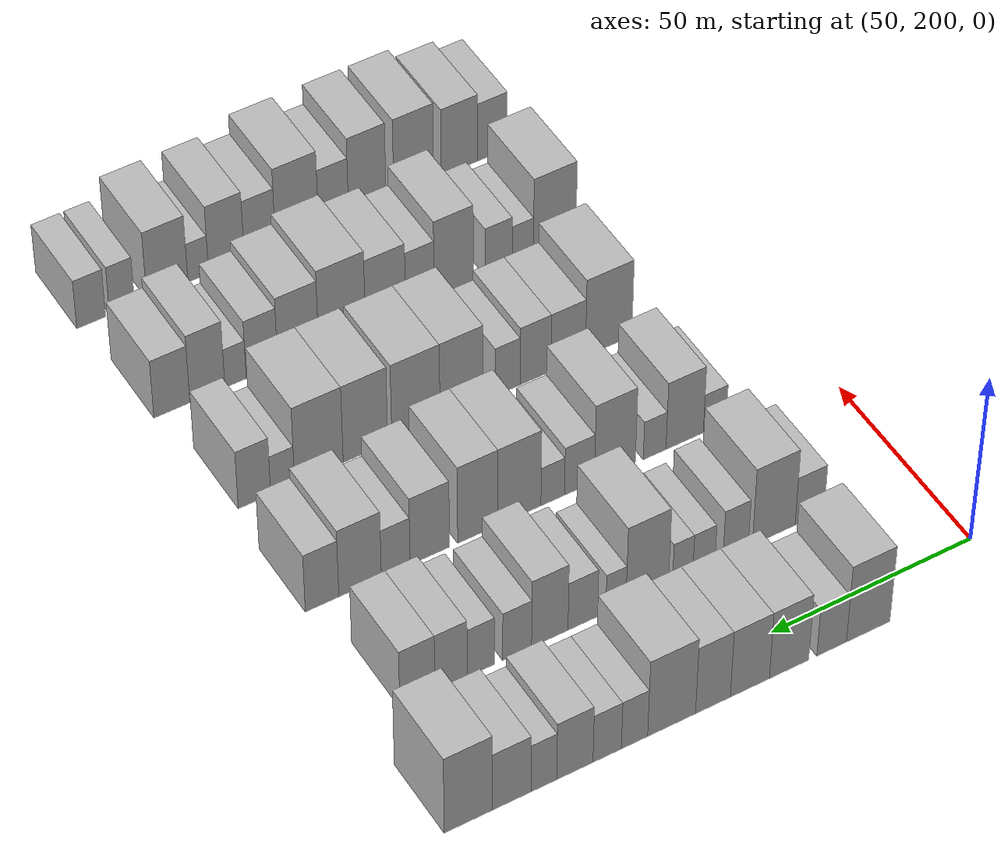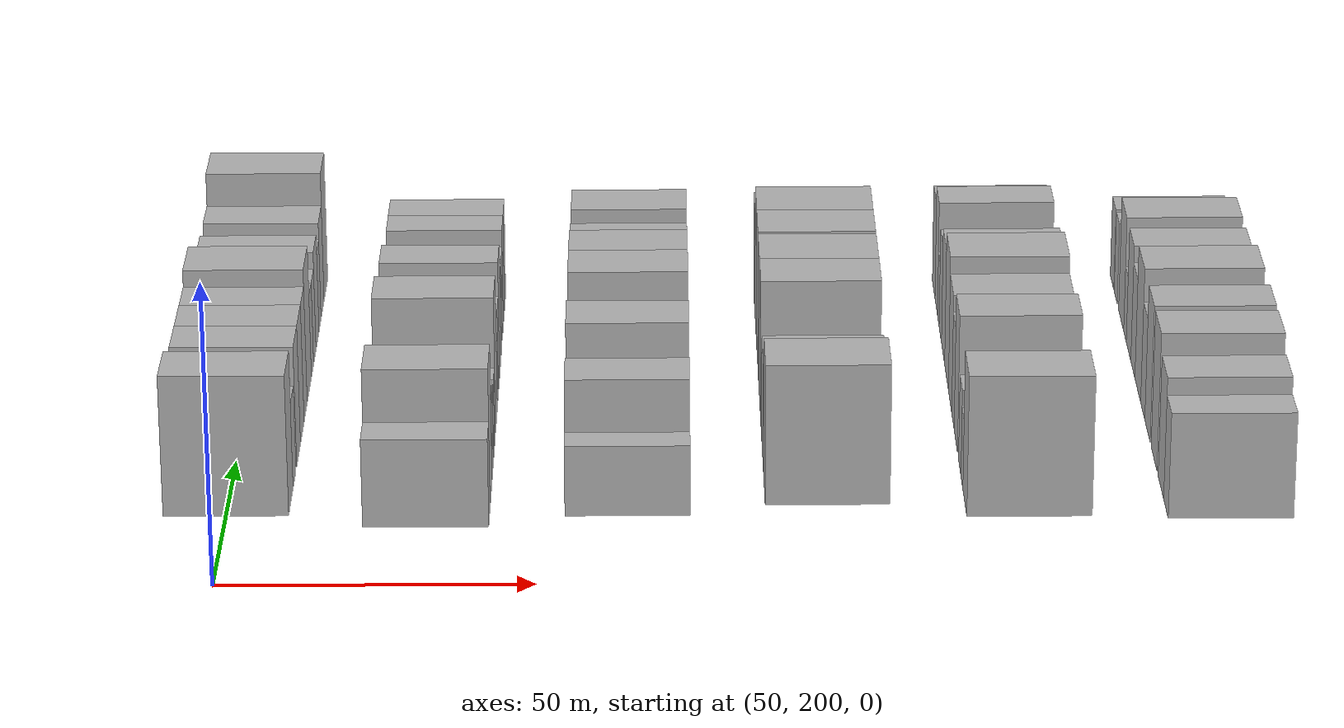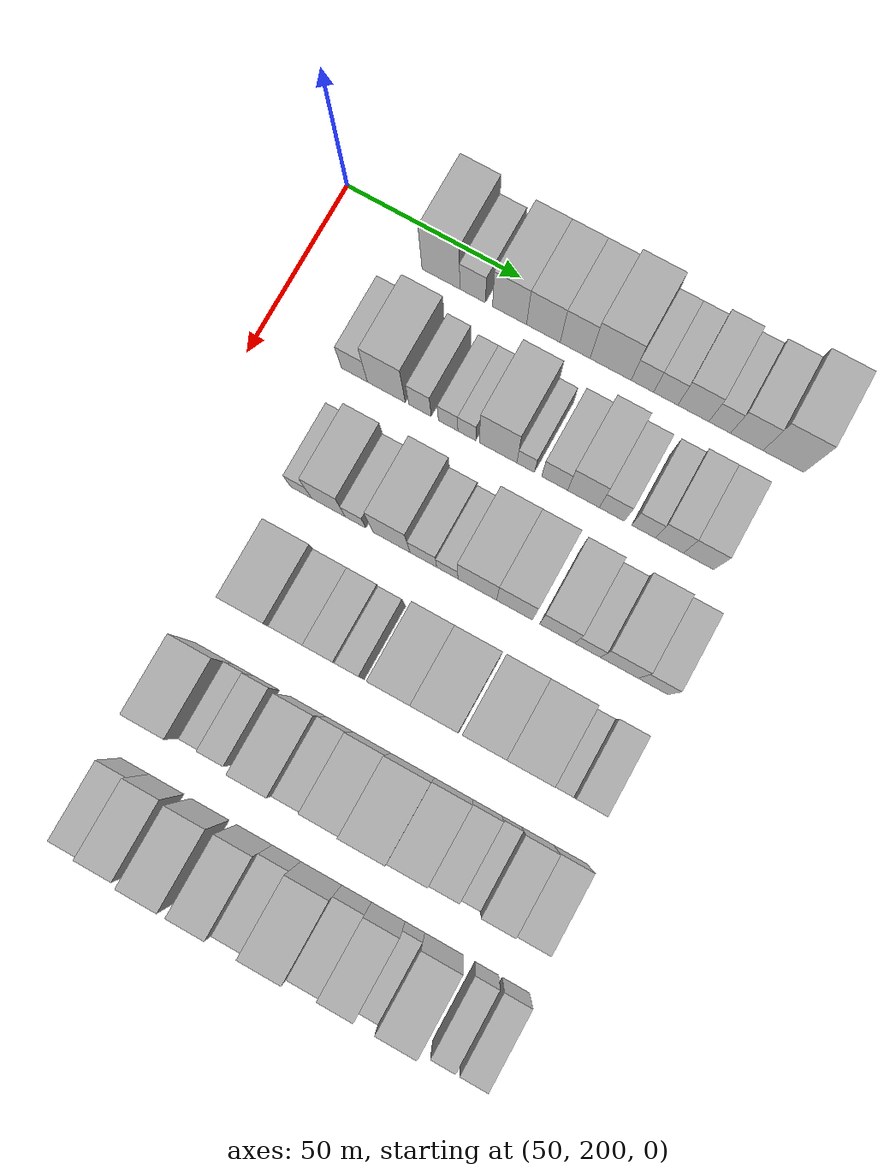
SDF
<sdf version="1.6">
 <world name="default">
  <model name="building_85">
   <static>1</static>
   <pose>50.0000 232.6775 0 0.000000 0.000000 0.000000</pose>
   <link name="link">
    <pose>0 0 12.00 0 0 0</pose>
    <collision name="collision"><geometry><box><size>20.0000 10.8062 24.0000</size></box></geometry></collision>
    <visual name="visual">
     <cast_shadows>0</cast_shadows>
     <geometry><box><size>20.0000 10.8062 24.0000</size></box></geometry>
     <material>
      <script>
       <uri>model://HANNAS_wall/materials/scripts</uri>
       <uri>model://HANNAS_wall/materials/textures</uri>
       <name>vrc/HANNAS_wall</name>
      </script>
     </material>
    </visual>
   </link>
  </model>
  <model name="building_86">
   <static>1</static>
   <pose>50.0000 241.7405 0 0.000000 0.000000 0.000000</pose>
   <link name="link">
    <pose>0 0 7.50 0 0 0</pose>
    <collision name="collision"><geometry><box><size>20.0000 7.3197 15.0000</size></box></geometry></collision>
    <visual name="visual">
     <cast_shadows>0</cast_shadows>
     <geometry><box><size>20.0000 7.3197 15.0000</size></box></geometry>
     <material>
      <script>
       <uri>model://HANNAS_wall/materials/scripts</uri>
       <uri>model://HANNAS_wall/materials/textures</uri>
       <name>vrc/HANNAS_wall</name>
      </script>
     </material>
    </visual>
   </link>
  </model>
  <model name="building_87">
   <static>1</static>
   <pose>50.0000 252.2231 0 0.000000 0.000000 0.000000</pose>
   <link name="link">
    <pose>0 0 10.50 0 0 0</pose>
    <collision name="collision"><geometry><box><size>20.0000 9.6453 21.0000</size></box></geometry></collision>
    <visual name="visual">
     <cast_shadows>0</cast_shadows>
     <geometry><box><size>20.0000 9.6453 21.0000</size></box></geometry>
     <material>
      <script>
       <uri>model://HANNAS_wall/materials/scripts</uri>
       <uri>model://HANNAS_wall/materials/textures</uri>
       <name>vrc/HANNAS_wall</name>
      </script>
     </material>
    </visual>
   </link>
  </model>
  <model name="building_88">
   <static>1</static>
   <pose>50.0000 261.8066 0 0.000000 0.000000 0.000000</pose>
   <link name="link">
    <pose>0 0 10.50 0 0 0</pose>
    <collision name="collision"><geometry><box><size>20.0000 9.5218 21.0000</size></box></geometry></collision>
    <visual name="visual">
     <cast_shadows>0</cast_shadows>
     <geometry><box><size>20.0000 9.5218 21.0000</size></box></geometry>
     <material>
      <script>
       <uri>model://HANNAS_wall/materials/scripts</uri>
       <uri>model://HANNAS_wall/materials/textures</uri>
       <name>vrc/HANNAS_wall</name>
      </script>
     </material>
    </visual>
   </link>
  </model>
  <model name="building_89">
   <static>1</static>
   <pose>50.0000 270.7801 0 0.000000 0.000000 0.000000</pose>
   <link name="link">
    <pose>0 0 10.50 0 0 0</pose>
    <collision name="collision"><geometry><box><size>20.0000 8.4251 21.0000</size></box></geometry></collision>
    <visual name="visual">
     <cast_shadows>0</cast_shadows>
     <geometry><box><size>20.0000 8.4251 21.0000</size></box></geometry>
     <material>
      <script>
       <uri>model://HANNAS_wall/materials/scripts</uri>
       <uri>model://HANNAS_wall/materials/textures</uri>
       <name>vrc/HANNAS_wall</name>
      </script>
     </material>
    </visual>
   </link>
  </model>
  <model name="building_90">
   <static>1</static>
   <pose>50.0000 280.7421 0 0.000000 0.000000 0.000000</pose>
   <link name="link">
    <pose>0 0 12.00 0 0 0</pose>
    <collision name="collision"><geometry><box><size>20.0000 11.4990 24.0000</size></box></geometry></collision>
    <visual name="visual">
     <cast_shadows>0</cast_shadows>
     <geometry><box><size>20.0000 11.4990 24.0000</size></box></geometry>
     <material>
      <script>
       <uri>model://HANNAS_wall/materials/scripts</uri>
       <uri>model://HANNAS_wall/materials/textures</uri>
       <name>vrc/HANNAS_wall</name>
      </script>
     </material>
    </visual>
   </link>
  </model>
  <model name="building_91">
   <static>1</static>
   <pose>50.0000 289.6226 0 0.000000 0.000000 0.000000</pose>
   <link name="link">
    <pose>0 0 7.50 0 0 0</pose>
    <collision name="collision"><geometry><box><size>20.0000 6.2621 15.0000</size></box></geometry></collision>
    <visual name="visual">
     <cast_shadows>0</cast_shadows>
     <geometry><box><size>20.0000 6.2621 15.0000</size></box></geometry>
     <material>
      <script>
       <uri>model://HANNAS_wall/materials/scripts</uri>
       <uri>model://HANNAS_wall/materials/textures</uri>
       <name>vrc/HANNAS_wall</name>
      </script>
     </material>
    </visual>
   </link>
  </model>
  <model name="building_92">
   <static>1</static>
   <pose>50.0000 296.1294 0 0.000000 0.000000 0.000000</pose>
   <link name="link">
    <pose>0 0 7.50 0 0 0</pose>
    <collision name="collision"><geometry><box><size>20.0000 6.7515 15.0000</size></box></geometry></collision>
    <visual name="visual">
     <cast_shadows>0</cast_shadows>
     <geometry><box><size>20.0000 6.7515 15.0000</size></box></geometry>
     <material>
      <script>
       <uri>model://HANNAS_wall/materials/scripts</uri>
       <uri>model://HANNAS_wall/materials/textures</uri>
       <name>vrc/HANNAS_wall</name>
      </script>
     </material>
    </visual>
   </link>
  </model>
  <model name="building_93">
   <static>1</static>
   <pose>50.0000 303.7982 0 0.000000 0.000000 0.000000</pose>
   <link name="link">
    <pose>0 0 9.00 0 0 0</pose>
    <collision name="collision"><geometry><box><size>20.0000 8.5862 18.0000</size></box></geometry></collision>
    <visual name="visual">
     <cast_shadows>0</cast_shadows>
     <geometry><box><size>20.0000 8.5862 18.0000</size></box></geometry>
     <material>
      <script>
       <uri>model://HANNAS_wall/materials/scripts</uri>
       <uri>model://HANNAS_wall/materials/textures</uri>
       <name>vrc/HANNAS_wall</name>
      </script>
     </material>
    </visual>
   </link>
  </model>
  <model name="building_94">
   <static>1</static>
   <pose>50.0000 311.1018 0 0.000000 0.000000 0.000000</pose>
   <link name="link">
    <pose>0 0 7.50 0 0 0</pose>
    <collision name="collision"><geometry><box><size>20.0000 6.0210 15.0000</size></box></geometry></collision>
    <visual name="visual">
     <cast_shadows>0</cast_shadows>
     <geometry><box><size>20.0000 6.0210 15.0000</size></box></geometry>
     <material>
      <script>
       <uri>model://HANNAS_wall/materials/scripts</uri>
       <uri>model://HANNAS_wall/materials/textures</uri>
       <name>vrc/HANNAS_wall</name>
      </script>
     </material>
    </visual>
   </link>
  </model>
  <model name="building_95">
   <static>1</static>
   <pose>50.0000 318.6065 0 0.000000 0.000000 0.000000</pose>
   <link name="link">
    <pose>0 0 9.00 0 0 0</pose>
    <collision name="collision"><geometry><box><size>20.0000 8.9884 18.0000</size></box></geometry></collision>
    <visual name="visual">
     <cast_shadows>0</cast_shadows>
     <geometry><box><size>20.0000 8.9884 18.0000</size></box></geometry>
     <material>
      <script>
       <uri>model://HANNAS_wall/materials/scripts</uri>
       <uri>model://HANNAS_wall/materials/textures</uri>
       <name>vrc/HANNAS_wall</name>
      </script>
     </material>
    </visual>
   </link>
  </model>
  <model name="building_96">
   <static>1</static>
   <pose>50.0000 328.6964 0 0.000000 0.000000 0.000000</pose>
   <link name="link">
    <pose>0 0 12.00 0 0 0</pose>
    <collision name="collision"><geometry><box><size>20.0000 11.1913 24.0000</size></box></geometry></collision>
    <visual name="visual">
     <cast_shadows>0</cast_shadows>
     <geometry><box><size>20.0000 11.1913 24.0000</size></box></geometry>
     <material>
      <script>
       <uri>model://HANNAS_wall/materials/scripts</uri>
       <uri>model://HANNAS_wall/materials/textures</uri>
       <name>vrc/HANNAS_wall</name>
      </script>
     </material>
    </visual>
   </link>
  </model>
  <model name="building_205">
   <static>1</static>
   <pose>82.0000 226.1425 0 0.000000 0.000000 0.000000</pose>
   <link name="link">
    <pose>0 0 7.50 0 0 0</pose>
    <collision name="collision"><geometry><box><size>20.0000 7.3415 15.0000</size></box></geometry></collision>
    <visual name="visual">
     <cast_shadows>0</cast_shadows>
     <geometry><box><size>20.0000 7.3415 15.0000</size></box></geometry>
     <material>
      <script>
       <uri>model://HANNAS_wall/materials/scripts</uri>
       <uri>model://HANNAS_wall/materials/textures</uri>
       <name>vrc/HANNAS_wall</name>
      </script>
     </material>
    </visual>
   </link>
  </model>
  <model name="building_206">
   <static>1</static>
   <pose>82.0000 235.1916 0 0.000000 0.000000 0.000000</pose>
   <link name="link">
    <pose>0 0 12.00 0 0 0</pose>
    <collision name="collision"><geometry><box><size>20.0000 10.7566 24.0000</size></box></geometry></collision>
    <visual name="visual">
     <cast_shadows>0</cast_shadows>
     <geometry><box><size>20.0000 10.7566 24.0000</size></box></geometry>
     <material>
      <script>
       <uri>model://HANNAS_wall/materials/scripts</uri>
       <uri>model://HANNAS_wall/materials/textures</uri>
       <name>vrc/HANNAS_wall</name>
      </script>
     </material>
    </visual>
   </link>
  </model>
  <model name="building_207">
   <static>1</static>
   <pose>82.0000 244.7305 0 0.000000 0.000000 0.000000</pose>
   <link name="link">
    <pose>0 0 7.50 0 0 0</pose>
    <collision name="collision"><geometry><box><size>20.0000 6.3211 15.0000</size></box></geometry></collision>
    <visual name="visual">
     <cast_shadows>0</cast_shadows>
     <geometry><box><size>20.0000 6.3211 15.0000</size></box></geometry>
     <material>
      <script>
       <uri>model://HANNAS_wall/materials/scripts</uri>
       <uri>model://HANNAS_wall/materials/textures</uri>
       <name>vrc/HANNAS_wall</name>
      </script>
     </material>
    </visual>
   </link>
  </model>
  <model name="building_208">
   <static>1</static>
   <pose>82.0000 252.6291 0 0.000000 0.000000 0.000000</pose>
   <link name="link">
    <pose>0 0 6.00 0 0 0</pose>
    <collision name="collision"><geometry><box><size>20.0000 5.4761 12.0000</size></box></geometry></collision>
    <visual name="visual">
     <cast_shadows>0</cast_shadows>
     <geometry><box><size>20.0000 5.4761 12.0000</size></box></geometry>
     <material>
      <script>
       <uri>model://HANNAS_wall/materials/scripts</uri>
       <uri>model://HANNAS_wall/materials/textures</uri>
       <name>vrc/HANNAS_wall</name>
      </script>
     </material>
    </visual>
   </link>
  </model>
  <model name="building_209">
   <static>1</static>
   <pose>82.0000 257.8853 0 0.000000 0.000000 0.000000</pose>
   <link name="link">
    <pose>0 0 6.00 0 0 0</pose>
    <collision name="collision"><geometry><box><size>20.0000 5.0364 12.0000</size></box></geometry></collision>
    <visual name="visual">
     <cast_shadows>0</cast_shadows>
     <geometry><box><size>20.0000 5.0364 12.0000</size></box></geometry>
     <material>
      <script>
       <uri>model://HANNAS_wall/materials/scripts</uri>
       <uri>model://HANNAS_wall/materials/textures</uri>
       <name>vrc/HANNAS_wall</name>
      </script>
     </material>
    </visual>
   </link>
  </model>
  <model name="building_210">
   <static>1</static>
   <pose>82.0000 266.6277 0 0.000000 0.000000 0.000000</pose>
   <link name="link">
    <pose>0 0 12.00 0 0 0</pose>
    <collision name="collision"><geometry><box><size>20.0000 10.4486 24.0000</size></box></geometry></collision>
    <visual name="visual">
     <cast_shadows>0</cast_shadows>
     <geometry><box><size>20.0000 10.4486 24.0000</size></box></geometry>
     <material>
      <script>
       <uri>model://HANNAS_wall/materials/scripts</uri>
       <uri>model://HANNAS_wall/materials/textures</uri>
       <name>vrc/HANNAS_wall</name>
      </script>
     </material>
    </visual>
   </link>
  </model>
  <model name="building_211">
   <static>1</static>
   <pose>82.0000 274.3190 0 0.000000 0.000000 0.000000</pose>
   <link name="link">
    <pose>0 0 6.00 0 0 0</pose>
    <collision name="collision"><geometry><box><size>20.0000 4.9340 12.0000</size></box></geometry></collision>
    <visual name="visual">
     <cast_shadows>0</cast_shadows>
     <geometry><box><size>20.0000 4.9340 12.0000</size></box></geometry>
     <material>
      <script>
       <uri>model://HANNAS_wall/materials/scripts</uri>
       <uri>model://HANNAS_wall/materials/textures</uri>
       <name>vrc/HANNAS_wall</name>
      </script>
     </material>
    </visual>
   </link>
  </model>
  <model name="building_212">
   <static>1</static>
   <pose>82.0000 282.3787 0 0.000000 0.000000 0.000000</pose>
   <link name="link">
    <pose>0 0 7.50 0 0 0</pose>
    <collision name="collision"><geometry><box><size>20.0000 7.1854 15.0000</size></box></geometry></collision>
    <visual name="visual">
     <cast_shadows>0</cast_shadows>
     <geometry><box><size>20.0000 7.1854 15.0000</size></box></geometry>
     <material>
      <script>
       <uri>model://HANNAS_wall/materials/scripts</uri>
       <uri>model://HANNAS_wall/materials/textures</uri>
       <name>vrc/HANNAS_wall</name>
      </script>
     </material>
    </visual>
   </link>
  </model>
  <model name="building_213">
   <static>1</static>
   <pose>82.0000 290.3673 0 0.000000 0.000000 0.000000</pose>
   <link name="link">
    <pose>0 0 10.50 0 0 0</pose>
    <collision name="collision"><geometry><box><size>20.0000 8.7919 21.0000</size></box></geometry></collision>
    <visual name="visual">
     <cast_shadows>0</cast_shadows>
     <geometry><box><size>20.0000 8.7919 21.0000</size></box></geometry>
     <material>
      <script>
       <uri>model://HANNAS_wall/materials/scripts</uri>
       <uri>model://HANNAS_wall/materials/textures</uri>
       <name>vrc/HANNAS_wall</name>
      </script>
     </material>
    </visual>
   </link>
  </model>
  <model name="building_214">
   <static>1</static>
   <pose>82.0000 298.2306 0 0.000000 0.000000 0.000000</pose>
   <link name="link">
    <pose>0 0 7.50 0 0 0</pose>
    <collision name="collision"><geometry><box><size>20.0000 6.9346 15.0000</size></box></geometry></collision>
    <visual name="visual">
     <cast_shadows>0</cast_shadows>
     <geometry><box><size>20.0000 6.9346 15.0000</size></box></geometry>
     <material>
      <script>
       <uri>model://HANNAS_wall/materials/scripts</uri>
       <uri>model://HANNAS_wall/materials/textures</uri>
       <name>vrc/HANNAS_wall</name>
      </script>
     </material>
    </visual>
   </link>
  </model>
  <model name="building_215">
   <static>1</static>
   <pose>82.0000 306.9303 0 0.000000 0.000000 0.000000</pose>
   <link name="link">
    <pose>0 0 7.50 0 0 0</pose>
    <collision name="collision"><geometry><box><size>20.0000 6.4648 15.0000</size></box></geometry></collision>
    <visual name="visual">
     <cast_shadows>0</cast_shadows>
     <geometry><box><size>20.0000 6.4648 15.0000</size></box></geometry>
     <material>
      <script>
       <uri>model://HANNAS_wall/materials/scripts</uri>
       <uri>model://HANNAS_wall/materials/textures</uri>
       <name>vrc/HANNAS_wall</name>
      </script>
     </material>
    </visual>
   </link>
  </model>
  <model name="building_216">
   <static>1</static>
   <pose>82.0000 313.9962 0 0.000000 0.000000 0.000000</pose>
   <link name="link">
    <pose>0 0 9.00 0 0 0</pose>
    <collision name="collision"><geometry><box><size>20.0000 7.6670 18.0000</size></box></geometry></collision>
    <visual name="visual">
     <cast_shadows>0</cast_shadows>
     <geometry><box><size>20.0000 7.6670 18.0000</size></box></geometry>
     <material>
      <script>
       <uri>model://HANNAS_wall/materials/scripts</uri>
       <uri>model://HANNAS_wall/materials/textures</uri>
       <name>vrc/HANNAS_wall</name>
      </script>
     </material>
    </visual>
   </link>
  </model>
  <model name="building_217">
   <static>1</static>
   <pose>82.0000 321.9769 0 0.000000 0.000000 0.000000</pose>
   <link name="link">
    <pose>0 0 9.00 0 0 0</pose>
    <collision name="collision"><geometry><box><size>20.0000 8.2944 18.0000</size></box></geometry></collision>
    <visual name="visual">
     <cast_shadows>0</cast_shadows>
     <geometry><box><size>20.0000 8.2944 18.0000</size></box></geometry>
     <material>
      <script>
       <uri>model://HANNAS_wall/materials/scripts</uri>
       <uri>model://HANNAS_wall/materials/textures</uri>
       <name>vrc/HANNAS_wall</name>
      </script>
     </material>
    </visual>
   </link>
  </model>
  <model name="building_324">
   <static>1</static>
   <pose>114.0000 229.5296 0 0.000000 0.000000 0.000000</pose>
   <link name="link">
    <pose>0 0 6.00 0 0 0</pose>
    <collision name="collision"><geometry><box><size>20.0000 5.8527 12.0000</size></box></geometry></collision>
    <visual name="visual">
     <cast_shadows>0</cast_shadows>
     <geometry><box><size>20.0000 5.8527 12.0000</size></box></geometry>
     <material>
      <script>
       <uri>model://HANNAS_wall/materials/scripts</uri>
       <uri>model://HANNAS_wall/materials/textures</uri>
       <name>vrc/HANNAS_wall</name>
      </script>
     </material>
    </visual>
   </link>
  </model>
  <model name="building_325">
   <static>1</static>
   <pose>114.0000 237.1925 0 0.000000 0.000000 0.000000</pose>
   <link name="link">
    <pose>0 0 10.50 0 0 0</pose>
    <collision name="collision"><geometry><box><size>20.0000 9.4731 21.0000</size></box></geometry></collision>
    <visual name="visual">
     <cast_shadows>0</cast_shadows>
     <geometry><box><size>20.0000 9.4731 21.0000</size></box></geometry>
     <material>
      <script>
       <uri>model://HANNAS_wall/materials/scripts</uri>
       <uri>model://HANNAS_wall/materials/textures</uri>
       <name>vrc/HANNAS_wall</name>
      </script>
     </material>
    </visual>
   </link>
  </model>
  <model name="building_326">
   <static>1</static>
   <pose>114.0000 244.8011 0 0.000000 0.000000 0.000000</pose>
   <link name="link">
    <pose>0 0 6.00 0 0 0</pose>
    <collision name="collision"><geometry><box><size>20.0000 5.7439 12.0000</size></box></geometry></collision>
    <visual name="visual">
     <cast_shadows>0</cast_shadows>
     <geometry><box><size>20.0000 5.7439 12.0000</size></box></geometry>
     <material>
      <script>
       <uri>model://HANNAS_wall/materials/scripts</uri>
       <uri>model://HANNAS_wall/materials/textures</uri>
       <name>vrc/HANNAS_wall</name>
      </script>
     </material>
    </visual>
   </link>
  </model>
  <model name="building_327">
   <static>1</static>
   <pose>114.0000 254.8200 0 0.000000 0.000000 0.000000</pose>
   <link name="link">
    <pose>0 0 12.00 0 0 0</pose>
    <collision name="collision"><geometry><box><size>20.0000 10.2940 24.0000</size></box></geometry></collision>
    <visual name="visual">
     <cast_shadows>0</cast_shadows>
     <geometry><box><size>20.0000 10.2940 24.0000</size></box></geometry>
     <material>
      <script>
       <uri>model://HANNAS_wall/materials/scripts</uri>
       <uri>model://HANNAS_wall/materials/textures</uri>
       <name>vrc/HANNAS_wall</name>
      </script>
     </material>
    </visual>
   </link>
  </model>
  <model name="building_328">
   <static>1</static>
   <pose>114.0000 263.6807 0 0.000000 0.000000 0.000000</pose>
   <link name="link">
    <pose>0 0 7.50 0 0 0</pose>
    <collision name="collision"><geometry><box><size>20.0000 7.4273 15.0000</size></box></geometry></collision>
    <visual name="visual">
     <cast_shadows>0</cast_shadows>
     <geometry><box><size>20.0000 7.4273 15.0000</size></box></geometry>
     <material>
      <script>
       <uri>model://HANNAS_wall/materials/scripts</uri>
       <uri>model://HANNAS_wall/materials/textures</uri>
       <name>vrc/HANNAS_wall</name>
      </script>
     </material>
    </visual>
   </link>
  </model>
  <model name="building_329">
   <static>1</static>
   <pose>114.0000 270.3201 0 0.000000 0.000000 0.000000</pose>
   <link name="link">
    <pose>0 0 6.00 0 0 0</pose>
    <collision name="collision"><geometry><box><size>20.0000 5.8515 12.0000</size></box></geometry></collision>
    <visual name="visual">
     <cast_shadows>0</cast_shadows>
     <geometry><box><size>20.0000 5.8515 12.0000</size></box></geometry>
     <material>
      <script>
       <uri>model://HANNAS_wall/materials/scripts</uri>
       <uri>model://HANNAS_wall/materials/textures</uri>
       <name>vrc/HANNAS_wall</name>
      </script>
     </material>
    </visual>
   </link>
  </model>
  <model name="building_330">
   <static>1</static>
   <pose>114.0000 278.5596 0 0.000000 0.000000 0.000000</pose>
   <link name="link">
    <pose>0 0 12.00 0 0 0</pose>
    <collision name="collision"><geometry><box><size>20.0000 10.6276 24.0000</size></box></geometry></collision>
    <visual name="visual">
     <cast_shadows>0</cast_shadows>
     <geometry><box><size>20.0000 10.6276 24.0000</size></box></geometry>
     <material>
      <script>
       <uri>model://HANNAS_wall/materials/scripts</uri>
       <uri>model://HANNAS_wall/materials/textures</uri>
       <name>vrc/HANNAS_wall</name>
      </script>
     </material>
    </visual>
   </link>
  </model>
  <model name="building_331">
   <static>1</static>
   <pose>114.0000 288.7826 0 0.000000 0.000000 0.000000</pose>
   <link name="link">
    <pose>0 0 12.00 0 0 0</pose>
    <collision name="collision"><geometry><box><size>20.0000 9.8183 24.0000</size></box></geometry></collision>
    <visual name="visual">
     <cast_shadows>0</cast_shadows>
     <geometry><box><size>20.0000 9.8183 24.0000</size></box></geometry>
     <material>
      <script>
       <uri>model://HANNAS_wall/materials/scripts</uri>
       <uri>model://HANNAS_wall/materials/textures</uri>
       <name>vrc/HANNAS_wall</name>
      </script>
     </material>
    </visual>
   </link>
  </model>
  <model name="building_332">
   <static>1</static>
   <pose>114.0000 300.4695 0 0.000000 0.000000 0.000000</pose>
   <link name="link">
    <pose>0 0 10.50 0 0 0</pose>
    <collision name="collision"><geometry><box><size>20.0000 9.5556 21.0000</size></box></geometry></collision>
    <visual name="visual">
     <cast_shadows>0</cast_shadows>
     <geometry><box><size>20.0000 9.5556 21.0000</size></box></geometry>
     <material>
      <script>
       <uri>model://HANNAS_wall/materials/scripts</uri>
       <uri>model://HANNAS_wall/materials/textures</uri>
       <name>vrc/HANNAS_wall</name>
      </script>
     </material>
    </visual>
   </link>
  </model>
  <model name="building_333">
   <static>1</static>
   <pose>114.0000 308.7145 0 0.000000 0.000000 0.000000</pose>
   <link name="link">
    <pose>0 0 7.50 0 0 0</pose>
    <collision name="collision"><geometry><box><size>20.0000 6.9345 15.0000</size></box></geometry></collision>
    <visual name="visual">
     <cast_shadows>0</cast_shadows>
     <geometry><box><size>20.0000 6.9345 15.0000</size></box></geometry>
     <material>
      <script>
       <uri>model://HANNAS_wall/materials/scripts</uri>
       <uri>model://HANNAS_wall/materials/textures</uri>
       <name>vrc/HANNAS_wall</name>
      </script>
     </material>
    </visual>
   </link>
  </model>
  <model name="building_334">
   <static>1</static>
   <pose>114.0000 317.2906 0 0.000000 0.000000 0.000000</pose>
   <link name="link">
    <pose>0 0 10.50 0 0 0</pose>
    <collision name="collision"><geometry><box><size>20.0000 10.2178 21.0000</size></box></geometry></collision>
    <visual name="visual">
     <cast_shadows>0</cast_shadows>
     <geometry><box><size>20.0000 10.2178 21.0000</size></box></geometry>
     <material>
      <script>
       <uri>model://HANNAS_wall/materials/scripts</uri>
       <uri>model://HANNAS_wall/materials/textures</uri>
       <name>vrc/HANNAS_wall</name>
      </script>
     </material>
    </visual>
   </link>
  </model>
  <model name="building_335">
   <static>1</static>
   <pose>114.0000 326.3983 0 0.000000 0.000000 0.000000</pose>
   <link name="link">
    <pose>0 0 9.00 0 0 0</pose>
    <collision name="collision"><geometry><box><size>20.0000 7.9976 18.0000</size></box></geometry></collision>
    <visual name="visual">
     <cast_shadows>0</cast_shadows>
     <geometry><box><size>20.0000 7.9976 18.0000</size></box></geometry>
     <material>
      <script>
       <uri>model://HANNAS_wall/materials/scripts</uri>
       <uri>model://HANNAS_wall/materials/textures</uri>
       <name>vrc/HANNAS_wall</name>
      </script>
     </material>
    </visual>
   </link>
  </model>
  <model name="building_445">
   <static>1</static>
   <pose>146.0000 236.6601 0 0.000000 0.000000 0.000000</pose>
   <link name="link">
    <pose>0 0 12.00 0 0 0</pose>
    <collision name="collision"><geometry><box><size>20.0000 11.9482 24.0000</size></box></geometry></collision>
    <visual name="visual">
     <cast_shadows>0</cast_shadows>
     <geometry><box><size>20.0000 11.9482 24.0000</size></box></geometry>
     <material>
      <script>
       <uri>model://HANNAS_wall/materials/scripts</uri>
       <uri>model://HANNAS_wall/materials/textures</uri>
       <name>vrc/HANNAS_wall</name>
      </script>
     </material>
    </visual>
   </link>
  </model>
  <model name="building_446">
   <static>1</static>
   <pose>146.0000 247.0251 0 0.000000 0.000000 0.000000</pose>
   <link name="link">
    <pose>0 0 9.00 0 0 0</pose>
    <collision name="collision"><geometry><box><size>20.0000 8.7819 18.0000</size></box></geometry></collision>
    <visual name="visual">
     <cast_shadows>0</cast_shadows>
     <geometry><box><size>20.0000 8.7819 18.0000</size></box></geometry>
     <material>
      <script>
       <uri>model://HANNAS_wall/materials/scripts</uri>
       <uri>model://HANNAS_wall/materials/textures</uri>
       <name>vrc/HANNAS_wall</name>
      </script>
     </material>
    </visual>
   </link>
  </model>
  <model name="building_447">
   <static>1</static>
   <pose>146.0000 255.3464 0 0.000000 0.000000 0.000000</pose>
   <link name="link">
    <pose>0 0 9.00 0 0 0</pose>
    <collision name="collision"><geometry><box><size>20.0000 7.8608 18.0000</size></box></geometry></collision>
    <visual name="visual">
     <cast_shadows>0</cast_shadows>
     <geometry><box><size>20.0000 7.8608 18.0000</size></box></geometry>
     <material>
      <script>
       <uri>model://HANNAS_wall/materials/scripts</uri>
       <uri>model://HANNAS_wall/materials/textures</uri>
       <name>vrc/HANNAS_wall</name>
      </script>
     </material>
    </visual>
   </link>
  </model>
  <model name="building_448">
   <static>1</static>
   <pose>146.0000 262.4040 0 0.000000 0.000000 0.000000</pose>
   <link name="link">
    <pose>0 0 7.50 0 0 0</pose>
    <collision name="collision"><geometry><box><size>20.0000 6.2544 15.0000</size></box></geometry></collision>
    <visual name="visual">
     <cast_shadows>0</cast_shadows>
     <geometry><box><size>20.0000 6.2544 15.0000</size></box></geometry>
     <material>
      <script>
       <uri>model://HANNAS_wall/materials/scripts</uri>
       <uri>model://HANNAS_wall/materials/textures</uri>
       <name>vrc/HANNAS_wall</name>
      </script>
     </material>
    </visual>
   </link>
  </model>
  <model name="building_449">
   <static>1</static>
   <pose>146.0000 273.9398 0 0.000000 0.000000 0.000000</pose>
   <link name="link">
    <pose>0 0 12.00 0 0 0</pose>
    <collision name="collision"><geometry><box><size>20.0000 10.8172 24.0000</size></box></geometry></collision>
    <visual name="visual">
     <cast_shadows>0</cast_shadows>
     <geometry><box><size>20.0000 10.8172 24.0000</size></box></geometry>
     <material>
      <script>
       <uri>model://HANNAS_wall/materials/scripts</uri>
       <uri>model://HANNAS_wall/materials/textures</uri>
       <name>vrc/HANNAS_wall</name>
      </script>
     </material>
    </visual>
   </link>
  </model>
  <model name="building_450">
   <static>1</static>
   <pose>146.0000 285.3461 0 0.000000 0.000000 0.000000</pose>
   <link name="link">
    <pose>0 0 12.00 0 0 0</pose>
    <collision name="collision"><geometry><box><size>20.0000 11.9954 24.0000</size></box></geometry></collision>
    <visual name="visual">
     <cast_shadows>0</cast_shadows>
     <geometry><box><size>20.0000 11.9954 24.0000</size></box></geometry>
     <material>
      <script>
       <uri>model://HANNAS_wall/materials/scripts</uri>
       <uri>model://HANNAS_wall/materials/textures</uri>
       <name>vrc/HANNAS_wall</name>
      </script>
     </material>
    </visual>
   </link>
  </model>
  <model name="building_451">
   <static>1</static>
   <pose>146.0000 297.8330 0 0.000000 0.000000 0.000000</pose>
   <link name="link">
    <pose>0 0 12.00 0 0 0</pose>
    <collision name="collision"><geometry><box><size>20.0000 10.9783 24.0000</size></box></geometry></collision>
    <visual name="visual">
     <cast_shadows>0</cast_shadows>
     <geometry><box><size>20.0000 10.9783 24.0000</size></box></geometry>
     <material>
      <script>
       <uri>model://HANNAS_wall/materials/scripts</uri>
       <uri>model://HANNAS_wall/materials/textures</uri>
       <name>vrc/HANNAS_wall</name>
      </script>
     </material>
    </visual>
   </link>
  </model>
  <model name="building_452">
   <static>1</static>
   <pose>146.0000 309.2623 0 0.000000 0.000000 0.000000</pose>
   <link name="link">
    <pose>0 0 12.00 0 0 0</pose>
    <collision name="collision"><geometry><box><size>20.0000 11.8802 24.0000</size></box></geometry></collision>
    <visual name="visual">
     <cast_shadows>0</cast_shadows>
     <geometry><box><size>20.0000 11.8802 24.0000</size></box></geometry>
     <material>
      <script>
       <uri>model://HANNAS_wall/materials/scripts</uri>
       <uri>model://HANNAS_wall/materials/textures</uri>
       <name>vrc/HANNAS_wall</name>
      </script>
     </material>
    </visual>
   </link>
  </model>
  <model name="building_453">
   <static>1</static>
   <pose>146.0000 318.1059 0 0.000000 0.000000 0.000000</pose>
   <link name="link">
    <pose>0 0 6.00 0 0 0</pose>
    <collision name="collision"><geometry><box><size>20.0000 5.8070 12.0000</size></box></geometry></collision>
    <visual name="visual">
     <cast_shadows>0</cast_shadows>
     <geometry><box><size>20.0000 5.8070 12.0000</size></box></geometry>
     <material>
      <script>
       <uri>model://HANNAS_wall/materials/scripts</uri>
       <uri>model://HANNAS_wall/materials/textures</uri>
       <name>vrc/HANNAS_wall</name>
      </script>
     </material>
    </visual>
   </link>
  </model>
  <model name="building_454">
   <static>1</static>
   <pose>146.0000 324.9353 0 0.000000 0.000000 0.000000</pose>
   <link name="link">
    <pose>0 0 9.00 0 0 0</pose>
    <collision name="collision"><geometry><box><size>20.0000 7.8519 18.0000</size></box></geometry></collision>
    <visual name="visual">
     <cast_shadows>0</cast_shadows>
     <geometry><box><size>20.0000 7.8519 18.0000</size></box></geometry>
     <material>
      <script>
       <uri>model://HANNAS_wall/materials/scripts</uri>
       <uri>model://HANNAS_wall/materials/textures</uri>
       <name>vrc/HANNAS_wall</name>
      </script>
     </material>
    </visual>
   </link>
  </model>
  <model name="building_558">
   <static>1</static>
   <pose>178.0000 231.0975 0 0.000000 0.000000 0.000000</pose>
   <link name="link">
    <pose>0 0 12.00 0 0 0</pose>
    <collision name="collision"><geometry><box><size>20.0000 11.0921 24.0000</size></box></geometry></collision>
    <visual name="visual">
     <cast_shadows>0</cast_shadows>
     <geometry><box><size>20.0000 11.0921 24.0000</size></box></geometry>
     <material>
      <script>
       <uri>model://HANNAS_wall/materials/scripts</uri>
       <uri>model://HANNAS_wall/materials/textures</uri>
       <name>vrc/HANNAS_wall</name>
      </script>
     </material>
    </visual>
   </link>
  </model>
  <model name="building_559">
   <static>1</static>
   <pose>178.0000 239.4042 0 0.000000 0.000000 0.000000</pose>
   <link name="link">
    <pose>0 0 6.00 0 0 0</pose>
    <collision name="collision"><geometry><box><size>20.0000 5.5214 12.0000</size></box></geometry></collision>
    <visual name="visual">
     <cast_shadows>0</cast_shadows>
     <geometry><box><size>20.0000 5.5214 12.0000</size></box></geometry>
     <material>
      <script>
       <uri>model://HANNAS_wall/materials/scripts</uri>
       <uri>model://HANNAS_wall/materials/textures</uri>
       <name>vrc/HANNAS_wall</name>
      </script>
     </material>
    </visual>
   </link>
  </model>
  <model name="building_560">
   <static>1</static>
   <pose>178.0000 245.6645 0 0.000000 0.000000 0.000000</pose>
   <link name="link">
    <pose>0 0 7.50 0 0 0</pose>
    <collision name="collision"><geometry><box><size>20.0000 6.9993 15.0000</size></box></geometry></collision>
    <visual name="visual">
     <cast_shadows>0</cast_shadows>
     <geometry><box><size>20.0000 6.9993 15.0000</size></box></geometry>
     <material>
      <script>
       <uri>model://HANNAS_wall/materials/scripts</uri>
       <uri>model://HANNAS_wall/materials/textures</uri>
       <name>vrc/HANNAS_wall</name>
      </script>
     </material>
    </visual>
   </link>
  </model>
  <model name="building_561">
   <static>1</static>
   <pose>178.0000 257.1906 0 0.000000 0.000000 0.000000</pose>
   <link name="link">
    <pose>0 0 12.00 0 0 0</pose>
    <collision name="collision"><geometry><box><size>20.0000 10.0529 24.0000</size></box></geometry></collision>
    <visual name="visual">
     <cast_shadows>0</cast_shadows>
     <geometry><box><size>20.0000 10.0529 24.0000</size></box></geometry>
     <material>
      <script>
       <uri>model://HANNAS_wall/materials/scripts</uri>
       <uri>model://HANNAS_wall/materials/textures</uri>
       <name>vrc/HANNAS_wall</name>
      </script>
     </material>
    </visual>
   </link>
  </model>
  <model name="building_562">
   <static>1</static>
   <pose>178.0000 265.8666 0 0.000000 0.000000 0.000000</pose>
   <link name="link">
    <pose>0 0 9.00 0 0 0</pose>
    <collision name="collision"><geometry><box><size>20.0000 7.2993 18.0000</size></box></geometry></collision>
    <visual name="visual">
     <cast_shadows>0</cast_shadows>
     <geometry><box><size>20.0000 7.2993 18.0000</size></box></geometry>
     <material>
      <script>
       <uri>model://HANNAS_wall/materials/scripts</uri>
       <uri>model://HANNAS_wall/materials/textures</uri>
       <name>vrc/HANNAS_wall</name>
      </script>
     </material>
    </visual>
   </link>
  </model>
  <model name="building_563">
   <static>1</static>
   <pose>178.0000 274.5941 0 0.000000 0.000000 0.000000</pose>
   <link name="link">
    <pose>0 0 10.50 0 0 0</pose>
    <collision name="collision"><geometry><box><size>20.0000 10.1555 21.0000</size></box></geometry></collision>
    <visual name="visual">
     <cast_shadows>0</cast_shadows>
     <geometry><box><size>20.0000 10.1555 21.0000</size></box></geometry>
     <material>
      <script>
       <uri>model://HANNAS_wall/materials/scripts</uri>
       <uri>model://HANNAS_wall/materials/textures</uri>
       <name>vrc/HANNAS_wall</name>
      </script>
     </material>
    </visual>
   </link>
  </model>
  <model name="building_564">
   <static>1</static>
   <pose>178.0000 285.5793 0 0.000000 0.000000 0.000000</pose>
   <link name="link">
    <pose>0 0 12.00 0 0 0</pose>
    <collision name="collision"><geometry><box><size>20.0000 11.8149 24.0000</size></box></geometry></collision>
    <visual name="visual">
     <cast_shadows>0</cast_shadows>
     <geometry><box><size>20.0000 11.8149 24.0000</size></box></geometry>
     <material>
      <script>
       <uri>model://HANNAS_wall/materials/scripts</uri>
       <uri>model://HANNAS_wall/materials/textures</uri>
       <name>vrc/HANNAS_wall</name>
      </script>
     </material>
    </visual>
   </link>
  </model>
  <model name="building_565">
   <static>1</static>
   <pose>178.0000 296.5934 0 0.000000 0.000000 0.000000</pose>
   <link name="link">
    <pose>0 0 10.50 0 0 0</pose>
    <collision name="collision"><geometry><box><size>20.0000 10.2134 21.0000</size></box></geometry></collision>
    <visual name="visual">
     <cast_shadows>0</cast_shadows>
     <geometry><box><size>20.0000 10.2134 21.0000</size></box></geometry>
     <material>
      <script>
       <uri>model://HANNAS_wall/materials/scripts</uri>
       <uri>model://HANNAS_wall/materials/textures</uri>
       <name>vrc/HANNAS_wall</name>
      </script>
     </material>
    </visual>
   </link>
  </model>
  <model name="building_566">
   <static>1</static>
   <pose>178.0000 305.6087 0 0.000000 0.000000 0.000000</pose>
   <link name="link">
    <pose>0 0 9.00 0 0 0</pose>
    <collision name="collision"><geometry><box><size>20.0000 7.8173 18.0000</size></box></geometry></collision>
    <visual name="visual">
     <cast_shadows>0</cast_shadows>
     <geometry><box><size>20.0000 7.8173 18.0000</size></box></geometry>
     <material>
      <script>
       <uri>model://HANNAS_wall/materials/scripts</uri>
       <uri>model://HANNAS_wall/materials/textures</uri>
       <name>vrc/HANNAS_wall</name>
      </script>
     </material>
    </visual>
   </link>
  </model>
  <model name="building_567">
   <static>1</static>
   <pose>178.0000 312.1483 0 0.000000 0.000000 0.000000</pose>
   <link name="link">
    <pose>0 0 6.00 0 0 0</pose>
    <collision name="collision"><geometry><box><size>20.0000 5.2620 12.0000</size></box></geometry></collision>
    <visual name="visual">
     <cast_shadows>0</cast_shadows>
     <geometry><box><size>20.0000 5.2620 12.0000</size></box></geometry>
     <material>
      <script>
       <uri>model://HANNAS_wall/materials/scripts</uri>
       <uri>model://HANNAS_wall/materials/textures</uri>
       <name>vrc/HANNAS_wall</name>
      </script>
     </material>
    </visual>
   </link>
  </model>
  <model name="building_568">
   <static>1</static>
   <pose>178.0000 319.0835 0 0.000000 0.000000 0.000000</pose>
   <link name="link">
    <pose>0 0 10.50 0 0 0</pose>
    <collision name="collision"><geometry><box><size>20.0000 8.6084 21.0000</size></box></geometry></collision>
    <visual name="visual">
     <cast_shadows>0</cast_shadows>
     <geometry><box><size>20.0000 8.6084 21.0000</size></box></geometry>
     <material>
      <script>
       <uri>model://HANNAS_wall/materials/scripts</uri>
       <uri>model://HANNAS_wall/materials/textures</uri>
       <name>vrc/HANNAS_wall</name>
      </script>
     </material>
    </visual>
   </link>
  </model>
  <model name="building_569">
   <static>1</static>
   <pose>178.0000 327.7874 0 0.000000 0.000000 0.000000</pose>
   <link name="link">
    <pose>0 0 9.00 0 0 0</pose>
    <collision name="collision"><geometry><box><size>20.0000 8.7992 18.0000</size></box></geometry></collision>
    <visual name="visual">
     <cast_shadows>0</cast_shadows>
     <geometry><box><size>20.0000 8.7992 18.0000</size></box></geometry>
     <material>
      <script>
       <uri>model://HANNAS_wall/materials/scripts</uri>
       <uri>model://HANNAS_wall/materials/textures</uri>
       <name>vrc/HANNAS_wall</name>
      </script>
     </material>
    </visual>
   </link>
  </model>
  <model name="building_676">
   <static>1</static>
   <pose>210.0000 228.2969 0 0.000000 0.000000 0.000000</pose>
   <link name="link">
    <pose>0 0 9.00 0 0 0</pose>
    <collision name="collision"><geometry><box><size>20.0000 7.8024 18.0000</size></box></geometry></collision>
    <visual name="visual">
     <cast_shadows>0</cast_shadows>
     <geometry><box><size>20.0000 7.8024 18.0000</size></box></geometry>
     <material>
      <script>
       <uri>model://HANNAS_wall/materials/scripts</uri>
       <uri>model://HANNAS_wall/materials/textures</uri>
       <name>vrc/HANNAS_wall</name>
      </script>
     </material>
    </visual>
   </link>
  </model>
  <model name="building_677">
   <static>1</static>
   <pose>210.0000 236.9914 0 0.000000 0.000000 0.000000</pose>
   <link name="link">
    <pose>0 0 10.50 0 0 0</pose>
    <collision name="collision"><geometry><box><size>20.0000 9.5865 21.0000</size></box></geometry></collision>
    <visual name="visual">
     <cast_shadows>0</cast_shadows>
     <geometry><box><size>20.0000 9.5865 21.0000</size></box></geometry>
     <material>
      <script>
       <uri>model://HANNAS_wall/materials/scripts</uri>
       <uri>model://HANNAS_wall/materials/textures</uri>
       <name>vrc/HANNAS_wall</name>
      </script>
     </material>
    </visual>
   </link>
  </model>
  <model name="building_678">
   <static>1</static>
   <pose>210.0000 248.9789 0 0.000000 0.000000 0.000000</pose>
   <link name="link">
    <pose>0 0 12.00 0 0 0</pose>
    <collision name="collision"><geometry><box><size>20.0000 10.3886 24.0000</size></box></geometry></collision>
    <visual name="visual">
     <cast_shadows>0</cast_shadows>
     <geometry><box><size>20.0000 10.3886 24.0000</size></box></geometry>
     <material>
      <script>
       <uri>model://HANNAS_wall/materials/scripts</uri>
       <uri>model://HANNAS_wall/materials/textures</uri>
       <name>vrc/HANNAS_wall</name>
      </script>
     </material>
    </visual>
   </link>
  </model>
  <model name="building_679">
   <static>1</static>
   <pose>210.0000 261.0257 0 0.000000 0.000000 0.000000</pose>
   <link name="link">
    <pose>0 0 12.00 0 0 0</pose>
    <collision name="collision"><geometry><box><size>20.0000 9.7051 24.0000</size></box></geometry></collision>
    <visual name="visual">
     <cast_shadows>0</cast_shadows>
     <geometry><box><size>20.0000 9.7051 24.0000</size></box></geometry>
     <material>
      <script>
       <uri>model://HANNAS_wall/materials/scripts</uri>
       <uri>model://HANNAS_wall/materials/textures</uri>
       <name>vrc/HANNAS_wall</name>
      </script>
     </material>
    </visual>
   </link>
  </model>
  <model name="building_680">
   <static>1</static>
   <pose>210.0000 269.7526 0 0.000000 0.000000 0.000000</pose>
   <link name="link">
    <pose>0 0 9.00 0 0 0</pose>
    <collision name="collision"><geometry><box><size>20.0000 7.7487 18.0000</size></box></geometry></collision>
    <visual name="visual">
     <cast_shadows>0</cast_shadows>
     <geometry><box><size>20.0000 7.7487 18.0000</size></box></geometry>
     <material>
      <script>
       <uri>model://HANNAS_wall/materials/scripts</uri>
       <uri>model://HANNAS_wall/materials/textures</uri>
       <name>vrc/HANNAS_wall</name>
      </script>
     </material>
    </visual>
   </link>
  </model>
  <model name="building_681">
   <static>1</static>
   <pose>210.0000 279.1315 0 0.000000 0.000000 0.000000</pose>
   <link name="link">
    <pose>0 0 12.00 0 0 0</pose>
    <collision name="collision"><geometry><box><size>20.0000 11.0090 24.0000</size></box></geometry></collision>
    <visual name="visual">
     <cast_shadows>0</cast_shadows>
     <geometry><box><size>20.0000 11.0090 24.0000</size></box></geometry>
     <material>
      <script>
       <uri>model://HANNAS_wall/materials/scripts</uri>
       <uri>model://HANNAS_wall/materials/textures</uri>
       <name>vrc/HANNAS_wall</name>
      </script>
     </material>
    </visual>
   </link>
  </model>
  <model name="building_682">
   <static>1</static>
   <pose>210.0000 288.6099 0 0.000000 0.000000 0.000000</pose>
   <link name="link">
    <pose>0 0 9.00 0 0 0</pose>
    <collision name="collision"><geometry><box><size>20.0000 7.9477 18.0000</size></box></geometry></collision>
    <visual name="visual">
     <cast_shadows>0</cast_shadows>
     <geometry><box><size>20.0000 7.9477 18.0000</size></box></geometry>
     <material>
      <script>
       <uri>model://HANNAS_wall/materials/scripts</uri>
       <uri>model://HANNAS_wall/materials/textures</uri>
       <name>vrc/HANNAS_wall</name>
      </script>
     </material>
    </visual>
   </link>
  </model>
  <model name="building_683">
   <static>1</static>
   <pose>210.0000 297.0925 0 0.000000 0.000000 0.000000</pose>
   <link name="link">
    <pose>0 0 10.50 0 0 0</pose>
    <collision name="collision"><geometry><box><size>20.0000 9.0175 21.0000</size></box></geometry></collision>
    <visual name="visual">
     <cast_shadows>0</cast_shadows>
     <geometry><box><size>20.0000 9.0175 21.0000</size></box></geometry>
     <material>
      <script>
       <uri>model://HANNAS_wall/materials/scripts</uri>
       <uri>model://HANNAS_wall/materials/textures</uri>
       <name>vrc/HANNAS_wall</name>
      </script>
     </material>
    </visual>
   </link>
  </model>
  <model name="building_684">
   <static>1</static>
   <pose>210.0000 304.2070 0 0.000000 0.000000 0.000000</pose>
   <link name="link">
    <pose>0 0 6.00 0 0 0</pose>
    <collision name="collision"><geometry><box><size>20.0000 5.2116 12.0000</size></box></geometry></collision>
    <visual name="visual">
     <cast_shadows>0</cast_shadows>
     <geometry><box><size>20.0000 5.2116 12.0000</size></box></geometry>
     <material>
      <script>
       <uri>model://HANNAS_wall/materials/scripts</uri>
       <uri>model://HANNAS_wall/materials/textures</uri>
       <name>vrc/HANNAS_wall</name>
      </script>
     </material>
    </visual>
   </link>
  </model>
  <model name="building_685">
   <static>1</static>
   <pose>210.0000 311.9548 0 0.000000 0.000000 0.000000</pose>
   <link name="link">
    <pose>0 0 10.50 0 0 0</pose>
    <collision name="collision"><geometry><box><size>20.0000 10.2839 21.0000</size></box></geometry></collision>
    <visual name="visual">
     <cast_shadows>0</cast_shadows>
     <geometry><box><size>20.0000 10.2839 21.0000</size></box></geometry>
     <material>
      <script>
       <uri>model://HANNAS_wall/materials/scripts</uri>
       <uri>model://HANNAS_wall/materials/textures</uri>
       <name>vrc/HANNAS_wall</name>
      </script>
     </material>
    </visual>
   </link>
  </model>
  <model name="building_686">
   <static>1</static>
   <pose>210.0000 323.2098 0 0.000000 0.000000 0.000000</pose>
   <link name="link">
    <pose>0 0 7.50 0 0 0</pose>
    <collision name="collision"><geometry><box><size>20.0000 6.2261 15.0000</size></box></geometry></collision>
    <visual name="visual">
     <cast_shadows>0</cast_shadows>
     <geometry><box><size>20.0000 6.2261 15.0000</size></box></geometry>
     <material>
      <script>
       <uri>model://HANNAS_wall/materials/scripts</uri>
       <uri>model://HANNAS_wall/materials/textures</uri>
       <name>vrc/HANNAS_wall</name>
      </script>
     </material>
    </visual>
   </link>
  </model>
  <model name="building_687">
   <static>1</static>
   <pose>210.0000 330.8758 0 0.000000 0.000000 0.000000</pose>
   <link name="link">
    <pose>0 0 7.50 0 0 0</pose>
    <collision name="collision"><geometry><box><size>20.0000 7.1061 15.0000</size></box></geometry></collision>
    <visual name="visual">
     <cast_shadows>0</cast_shadows>
     <geometry><box><size>20.0000 7.1061 15.0000</size></box></geometry>
     <material>
      <script>
       <uri>model://HANNAS_wall/materials/scripts</uri>
       <uri>model://HANNAS_wall/materials/textures</uri>
       <name>vrc/HANNAS_wall</name>
      </script>
     </material>
    </visual>
   </link>
  </model>
 </world>
</sdf>
